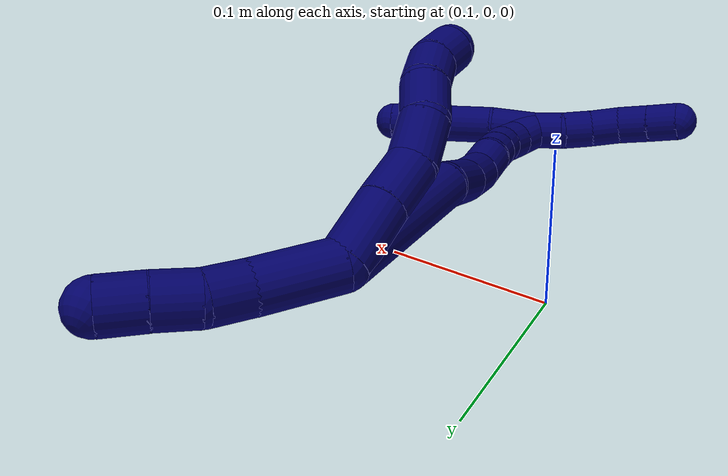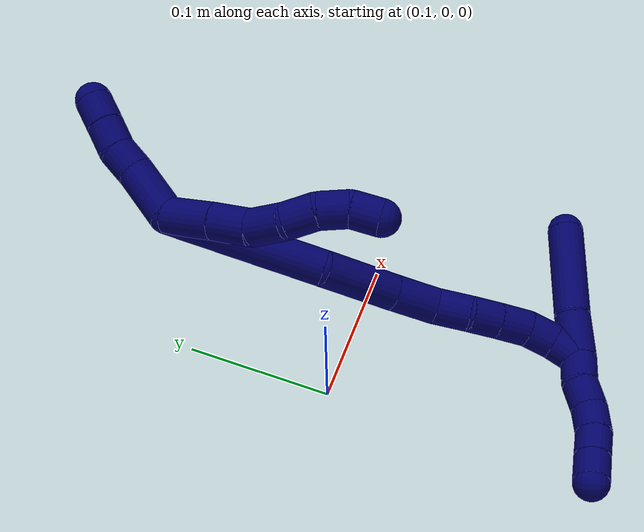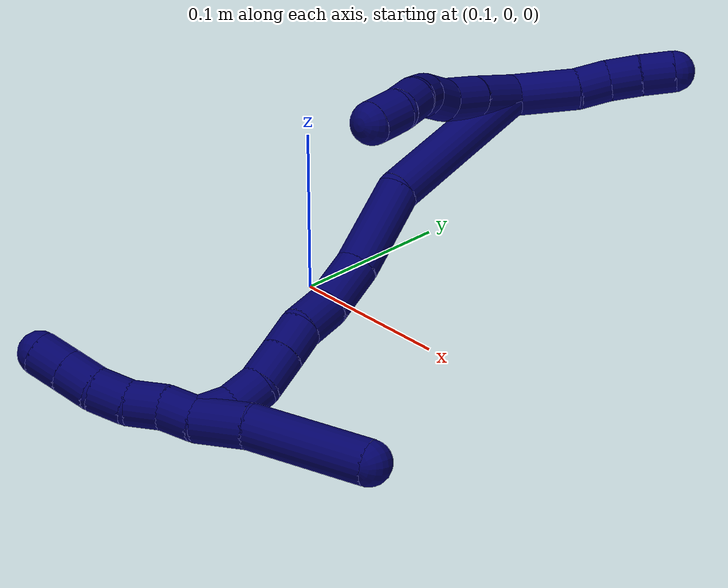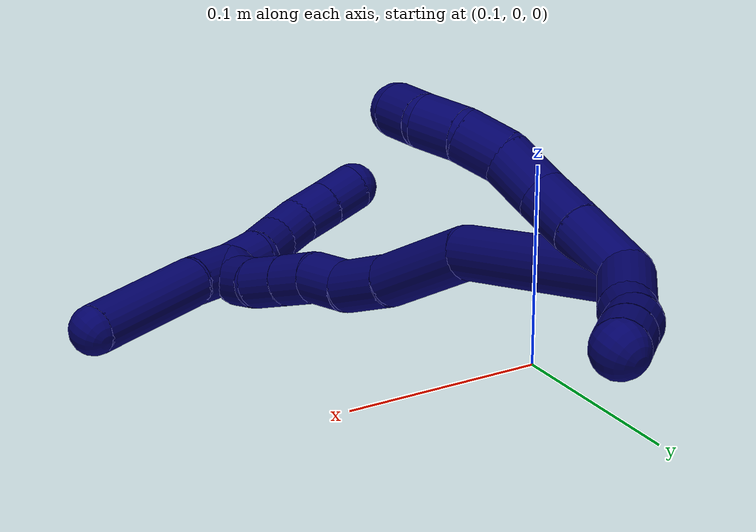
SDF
<sdf version="1.7">
 <world name="default">
  <model name="7">
   <static>0</static>
   <link name="7">
    <collision name="collision-cylinder-e_1_2_8">
     <pose>-0.001934 -0.000168 0.01713 0.009836 -0.112403 -0.000553</pose>
     <geometry><cylinder><radius>0.0125</radius><length>0.03448</length></cylinder></geometry>
     <surface>
      <friction><ode><mu>1.16</mu><mu2>1.16</mu2><slip1>0</slip1><slip2>0</slip2></ode></friction>
      <contact><ode><kp>1e+06</kp><kd>1</kd><max_vel>0</max_vel><min_depth>0.001</min_depth></ode></contact>
     </surface>
    </collision>
    <visual name="visual-cylinder-e_1_2_8">
     <pose>-0.001934 -0.000168 0.01713 0.009836 -0.112403 -0.000553</pose>
     <geometry><cylinder><radius>0.0125</radius><length>0.03448</length></cylinder></geometry>
     <material><ambient>0.003922 0 0.403922 1</ambient></material>
    </visual>
    <collision name="collision-cylinder-e_2_8_9">
     <pose>-0.005502 -0.001076 0.047683 0.054967 -0.121007 -0.003331</pose>
     <geometry><cylinder><radius>0.0125</radius><length>0.027085</length></cylinder></geometry>
     <surface>
      <friction><ode><mu>1.16</mu><mu2>1.16</mu2><slip1>0</slip1><slip2>0</slip2></ode></friction>
      <contact><ode><kp>1e+06</kp><kd>1</kd><max_vel>0</max_vel><min_depth>0.001</min_depth></ode></contact>
     </surface>
    </collision>
    <visual name="visual-cylinder-e_2_8_9">
     <pose>-0.005502 -0.001076 0.047683 0.054967 -0.121007 -0.003331</pose>
     <geometry><cylinder><radius>0.0125</radius><length>0.027085</length></cylinder></geometry>
     <material><ambient>0.003922 0 0.403922 1</ambient></material>
    </visual>
    <collision name="collision-cylinder-e_3_9_10">
     <pose>-0.007483 0.001388 0.073177 -0.259327 -0.027701 0.003612</pose>
     <geometry><cylinder><radius>0.0125</radius><length>0.024987</length></cylinder></geometry>
     <surface>
      <friction><ode><mu>1.16</mu><mu2>1.16</mu2><slip1>0</slip1><slip2>0</slip2></ode></friction>
      <contact><ode><kp>1e+06</kp><kd>1</kd><max_vel>0</max_vel><min_depth>0.001</min_depth></ode></contact>
     </surface>
    </collision>
    <visual name="visual-cylinder-e_3_9_10">
     <pose>-0.007483 0.001388 0.073177 -0.259327 -0.027701 0.003612</pose>
     <geometry><cylinder><radius>0.0125</radius><length>0.024987</length></cylinder></geometry>
     <material><ambient>0.003922 0 0.403922 1</ambient></material>
    </visual>
    <collision name="collision-cylinder-e_4_10_11">
     <pose>-0.004854 0.007147 0.095475 -0.244959 0.27507 -0.034072</pose>
     <geometry><cylinder><radius>0.0125</radius><length>0.021905</length></cylinder></geometry>
     <surface>
      <friction><ode><mu>1.16</mu><mu2>1.16</mu2><slip1>0</slip1><slip2>0</slip2></ode></friction>
      <contact><ode><kp>1e+06</kp><kd>1</kd><max_vel>0</max_vel><min_depth>0.001</min_depth></ode></contact>
     </surface>
    </collision>
    <visual name="visual-cylinder-e_4_10_11">
     <pose>-0.004854 0.007147 0.095475 -0.244959 0.27507 -0.034072</pose>
     <geometry><cylinder><radius>0.0125</radius><length>0.021905</length></cylinder></geometry>
     <material><ambient>0.003922 0 0.403922 1</ambient></material>
    </visual>
    <collision name="collision-cylinder-e_5_11_12">
     <pose>0.000918 0.009239 0.115921 0.045381 0.266865 0.006093</pose>
     <geometry><cylinder><radius>0.0125</radius><length>0.021213</length></cylinder></geometry>
     <surface>
      <friction><ode><mu>1.16</mu><mu2>1.16</mu2><slip1>0</slip1><slip2>0</slip2></ode></friction>
      <contact><ode><kp>1e+06</kp><kd>1</kd><max_vel>0</max_vel><min_depth>0.001</min_depth></ode></contact>
     </surface>
    </collision>
    <visual name="visual-cylinder-e_5_11_12">
     <pose>0.000918 0.009239 0.115921 0.045381 0.266865 0.006093</pose>
     <geometry><cylinder><radius>0.0125</radius><length>0.021213</length></cylinder></geometry>
     <material><ambient>0.003922 0 0.403922 1</ambient></material>
    </visual>
    <collision name="collision-cylinder-e_6_12_6">
     <pose>0.004064 0.005773 0.135848 0.299991 0.034319 0.005187</pose>
     <geometry><cylinder><radius>0.0125</radius><length>0.02033</length></cylinder></geometry>
     <surface>
      <friction><ode><mu>1.16</mu><mu2>1.16</mu2><slip1>0</slip1><slip2>0</slip2></ode></friction>
      <contact><ode><kp>1e+06</kp><kd>1</kd><max_vel>0</max_vel><min_depth>0.001</min_depth></ode></contact>
     </surface>
    </collision>
    <visual name="visual-cylinder-e_6_12_6">
     <pose>0.004064 0.005773 0.135848 0.299991 0.034319 0.005187</pose>
     <geometry><cylinder><radius>0.0125</radius><length>0.02033</length></cylinder></geometry>
     <material><ambient>0.003922 0 0.403922 1</ambient></material>
    </visual>
    <collision name="collision-cylinder-e_1_2_13">
     <pose>0.010594 0.009816 -0.013757 -2.52186 0.559937 -1.46342</pose>
     <geometry><cylinder><radius>0.0125</radius><length>0.039892</length></cylinder></geometry>
     <surface>
      <friction><ode><mu>1.16</mu><mu2>1.16</mu2><slip1>0</slip1><slip2>0</slip2></ode></friction>
      <contact><ode><kp>1e+06</kp><kd>1</kd><max_vel>0</max_vel><min_depth>0.001</min_depth></ode></contact>
     </surface>
    </collision>
    <visual name="visual-cylinder-e_1_2_13">
     <pose>0.010594 0.009816 -0.013757 -2.52186 0.559937 -1.46342</pose>
     <geometry><cylinder><radius>0.0125</radius><length>0.039892</length></cylinder></geometry>
     <material><ambient>0.003922 0 0.403922 1</ambient></material>
    </visual>
    <collision name="collision-cylinder-e_2_13_14">
     <pose>0.02506 0.025392 -0.034713 -2.46676 0.397599 -1.04252</pose>
     <geometry><cylinder><radius>0.0125</radius><length>0.02</length></cylinder></geometry>
     <surface>
      <friction><ode><mu>1.16</mu><mu2>1.16</mu2><slip1>0</slip1><slip2>0</slip2></ode></friction>
      <contact><ode><kp>1e+06</kp><kd>1</kd><max_vel>0</max_vel><min_depth>0.001</min_depth></ode></contact>
     </surface>
    </collision>
    <visual name="visual-cylinder-e_2_13_14">
     <pose>0.02506 0.025392 -0.034713 -2.46676 0.397599 -1.04252</pose>
     <geometry><cylinder><radius>0.0125</radius><length>0.02</length></cylinder></geometry>
     <material><ambient>0.003922 0 0.403922 1</ambient></material>
    </visual>
    <collision name="collision-cylinder-e_3_14_15">
     <pose>0.034553 0.037448 -0.047301 -2.27876 0.596051 -1.17686</pose>
     <geometry><cylinder><radius>0.0125</radius><length>0.020027</length></cylinder></geometry>
     <surface>
      <friction><ode><mu>1.16</mu><mu2>1.16</mu2><slip1>0</slip1><slip2>0</slip2></ode></friction>
      <contact><ode><kp>1e+06</kp><kd>1</kd><max_vel>0</max_vel><min_depth>0.001</min_depth></ode></contact>
     </surface>
    </collision>
    <visual name="visual-cylinder-e_3_14_15">
     <pose>0.034553 0.037448 -0.047301 -2.27876 0.596051 -1.17686</pose>
     <geometry><cylinder><radius>0.0125</radius><length>0.020027</length></cylinder></geometry>
     <material><ambient>0.003922 0 0.403922 1</ambient></material>
    </visual>
    <collision name="collision-cylinder-e_4_15_5">
     <pose>0.046074 0.04961 -0.058311 -2.33483 0.627992 -1.30088</pose>
     <geometry><cylinder><radius>0.0125</radius><length>0.020081</length></cylinder></geometry>
     <surface>
      <friction><ode><mu>1.16</mu><mu2>1.16</mu2><slip1>0</slip1><slip2>0</slip2></ode></friction>
      <contact><ode><kp>1e+06</kp><kd>1</kd><max_vel>0</max_vel><min_depth>0.001</min_depth></ode></contact>
     </surface>
    </collision>
    <visual name="visual-cylinder-e_4_15_5">
     <pose>0.046074 0.04961 -0.058311 -2.33483 0.627992 -1.30088</pose>
     <geometry><cylinder><radius>0.0125</radius><length>0.020081</length></cylinder></geometry>
     <material><ambient>0.003922 0 0.403922 1</ambient></material>
    </visual>
    <collision name="collision-cylinder-e_1_2_16">
     <pose>0.008357 -0.02281 0.047994 0.443665 0.155986 0.03525</pose>
     <geometry><cylinder><radius>0.0125</radius><length>0.107583</length></cylinder></geometry>
     <surface>
      <friction><ode><mu>1.16</mu><mu2>1.16</mu2><slip1>0</slip1><slip2>0</slip2></ode></friction>
      <contact><ode><kp>1e+06</kp><kd>1</kd><max_vel>0</max_vel><min_depth>0.001</min_depth></ode></contact>
     </surface>
    </collision>
    <visual name="visual-cylinder-e_1_2_16">
     <pose>0.008357 -0.02281 0.047994 0.443665 0.155986 0.03525</pose>
     <geometry><cylinder><radius>0.0125</radius><length>0.107583</length></cylinder></geometry>
     <material><ambient>0.003922 0 0.403922 1</ambient></material>
    </visual>
    <collision name="collision-cylinder-e_2_16_17">
     <pose>0.027677 -0.061011 0.115163 0.676376 0.419426 0.149435</pose>
     <geometry><cylinder><radius>0.0125</radius><length>0.053844</length></cylinder></geometry>
     <surface>
      <friction><ode><mu>1.16</mu><mu2>1.16</mu2><slip1>0</slip1><slip2>0</slip2></ode></friction>
      <contact><ode><kp>1e+06</kp><kd>1</kd><max_vel>0</max_vel><min_depth>0.001</min_depth></ode></contact>
     </surface>
    </collision>
    <visual name="visual-cylinder-e_2_16_17">
     <pose>0.027677 -0.061011 0.115163 0.676376 0.419426 0.149435</pose>
     <geometry><cylinder><radius>0.0125</radius><length>0.053844</length></cylinder></geometry>
     <material><ambient>0.003922 0 0.403922 1</ambient></material>
    </visual>
    <collision name="collision-cylinder-e_3_17_18">
     <pose>0.043535 -0.084265 0.146818 0.562189 0.320374 0.093237</pose>
     <geometry><cylinder><radius>0.0125</radius><length>0.031081</length></cylinder></geometry>
     <surface>
      <friction><ode><mu>1.16</mu><mu2>1.16</mu2><slip1>0</slip1><slip2>0</slip2></ode></friction>
      <contact><ode><kp>1e+06</kp><kd>1</kd><max_vel>0</max_vel><min_depth>0.001</min_depth></ode></contact>
     </surface>
    </collision>
    <visual name="visual-cylinder-e_3_17_18">
     <pose>0.043535 -0.084265 0.146818 0.562189 0.320374 0.093237</pose>
     <geometry><cylinder><radius>0.0125</radius><length>0.031081</length></cylinder></geometry>
     <material><ambient>0.003922 0 0.403922 1</ambient></material>
    </visual>
    <collision name="collision-cylinder-e_4_18_19">
     <pose>0.050509 -0.095897 0.170464 0.325547 0.17466 0.028755</pose>
     <geometry><cylinder><radius>0.0125</radius><length>0.023935</length></cylinder></geometry>
     <surface>
      <friction><ode><mu>1.16</mu><mu2>1.16</mu2><slip1>0</slip1><slip2>0</slip2></ode></friction>
      <contact><ode><kp>1e+06</kp><kd>1</kd><max_vel>0</max_vel><min_depth>0.001</min_depth></ode></contact>
     </surface>
    </collision>
    <visual name="visual-cylinder-e_4_18_19">
     <pose>0.050509 -0.095897 0.170464 0.325547 0.17466 0.028755</pose>
     <geometry><cylinder><radius>0.0125</radius><length>0.023935</length></cylinder></geometry>
     <material><ambient>0.003922 0 0.403922 1</ambient></material>
    </visual>
    <collision name="collision-cylinder-e_5_19_20">
     <pose>0.056208 -0.104288 0.190129 0.498137 0.358018 0.091982</pose>
     <geometry><cylinder><radius>0.0125</radius><length>0.020659</length></cylinder></geometry>
     <surface>
      <friction><ode><mu>1.16</mu><mu2>1.16</mu2><slip1>0</slip1><slip2>0</slip2></ode></friction>
      <contact><ode><kp>1e+06</kp><kd>1</kd><max_vel>0</max_vel><min_depth>0.001</min_depth></ode></contact>
     </surface>
    </collision>
    <visual name="visual-cylinder-e_5_19_20">
     <pose>0.056208 -0.104288 0.190129 0.498137 0.358018 0.091982</pose>
     <geometry><cylinder><radius>0.0125</radius><length>0.020659</length></cylinder></geometry>
     <material><ambient>0.003922 0 0.403922 1</ambient></material>
    </visual>
    <collision name="collision-cylinder-e_6_20_21">
     <pose>0.063595 -0.114114 0.207916 0.510676 0.340097 0.089583</pose>
     <geometry><cylinder><radius>0.0125</radius><length>0.022587</length></cylinder></geometry>
     <surface>
      <friction><ode><mu>1.16</mu><mu2>1.16</mu2><slip1>0</slip1><slip2>0</slip2></ode></friction>
      <contact><ode><kp>1e+06</kp><kd>1</kd><max_vel>0</max_vel><min_depth>0.001</min_depth></ode></contact>
     </surface>
    </collision>
    <visual name="visual-cylinder-e_6_20_21">
     <pose>0.063595 -0.114114 0.207916 0.510676 0.340097 0.089583</pose>
     <geometry><cylinder><radius>0.0125</radius><length>0.022587</length></cylinder></geometry>
     <material><ambient>0.003922 0 0.403922 1</ambient></material>
    </visual>
    <collision name="collision-cylinder-e_7_21_22">
     <pose>0.068057 -0.124641 0.225795 0.554703 0.068657 0.019553</pose>
     <geometry><cylinder><radius>0.0125</radius><length>0.020259</length></cylinder></geometry>
     <surface>
      <friction><ode><mu>1.16</mu><mu2>1.16</mu2><slip1>0</slip1><slip2>0</slip2></ode></friction>
      <contact><ode><kp>1e+06</kp><kd>1</kd><max_vel>0</max_vel><min_depth>0.001</min_depth></ode></contact>
     </surface>
    </collision>
    <visual name="visual-cylinder-e_7_21_22">
     <pose>0.068057 -0.124641 0.225795 0.554703 0.068657 0.019553</pose>
     <geometry><cylinder><radius>0.0125</radius><length>0.020259</length></cylinder></geometry>
     <material><ambient>0.003922 0 0.403922 1</ambient></material>
    </visual>
    <collision name="collision-cylinder-e_8_22_1">
     <pose>0.066437 -0.134235 0.243155 0.453244 -0.232975 -0.053951</pose>
     <geometry><cylinder><radius>0.0125</radius><length>0.020052</length></cylinder></geometry>
     <surface>
      <friction><ode><mu>1.16</mu><mu2>1.16</mu2><slip1>0</slip1><slip2>0</slip2></ode></friction>
      <contact><ode><kp>1e+06</kp><kd>1</kd><max_vel>0</max_vel><min_depth>0.001</min_depth></ode></contact>
     </surface>
    </collision>
    <visual name="visual-cylinder-e_8_22_1">
     <pose>0.066437 -0.134235 0.243155 0.453244 -0.232975 -0.053951</pose>
     <geometry><cylinder><radius>0.0125</radius><length>0.020052</length></cylinder></geometry>
     <material><ambient>0.003922 0 0.403922 1</ambient></material>
    </visual>
    <collision name="collision-cylinder-e_1_1_23">
     <pose>0.076258 -0.129733 0.248106 -1.98138 0.903121 -1.27423</pose>
     <geometry><cylinder><radius>0.0125</radius><length>0.03091</length></cylinder></geometry>
     <surface>
      <friction><ode><mu>1.16</mu><mu2>1.16</mu2><slip1>0</slip1><slip2>0</slip2></ode></friction>
      <contact><ode><kp>1e+06</kp><kd>1</kd><max_vel>0</max_vel><min_depth>0.001</min_depth></ode></contact>
     </surface>
    </collision>
    <visual name="visual-cylinder-e_1_1_23">
     <pose>0.076258 -0.129733 0.248106 -1.98138 0.903121 -1.27423</pose>
     <geometry><cylinder><radius>0.0125</radius><length>0.03091</length></cylinder></geometry>
     <material><ambient>0.003922 0 0.403922 1</ambient></material>
    </visual>
    <collision name="collision-cylinder-e_2_23_4">
     <pose>0.118552 -0.105705 0.237129 -2.00952 1.06129 -1.49129</pose>
     <geometry><cylinder><radius>0.0125</radius><length>0.06909</length></cylinder></geometry>
     <surface>
      <friction><ode><mu>1.16</mu><mu2>1.16</mu2><slip1>0</slip1><slip2>0</slip2></ode></friction>
      <contact><ode><kp>1e+06</kp><kd>1</kd><max_vel>0</max_vel><min_depth>0.001</min_depth></ode></contact>
     </surface>
    </collision>
    <visual name="visual-cylinder-e_2_23_4">
     <pose>0.118552 -0.105705 0.237129 -2.00952 1.06129 -1.49129</pose>
     <geometry><cylinder><radius>0.0125</radius><length>0.06909</length></cylinder></geometry>
     <material><ambient>0.003922 0 0.403922 1</ambient></material>
    </visual>
    <collision name="collision-cylinder-e_1_1_24">
     <pose>0.055107 -0.142409 0.253796 1.1239 -1.12326 -0.754455</pose>
     <geometry><cylinder><radius>0.0125</radius><length>0.02</length></cylinder></geometry>
     <surface>
      <friction><ode><mu>1.16</mu><mu2>1.16</mu2><slip1>0</slip1><slip2>0</slip2></ode></friction>
      <contact><ode><kp>1e+06</kp><kd>1</kd><max_vel>0</max_vel><min_depth>0.001</min_depth></ode></contact>
     </surface>
    </collision>
    <visual name="visual-cylinder-e_1_1_24">
     <pose>0.055107 -0.142409 0.253796 1.1239 -1.12326 -0.754455</pose>
     <geometry><cylinder><radius>0.0125</radius><length>0.02</length></cylinder></geometry>
     <material><ambient>0.003922 0 0.403922 1</ambient></material>
    </visual>
    <collision name="collision-cylinder-e_2_24_25">
     <pose>0.038438 -0.151036 0.260035 0.824464 -0.871668 -0.401797</pose>
     <geometry><cylinder><radius>0.0125</radius><length>0.02</length></cylinder></geometry>
     <surface>
      <friction><ode><mu>1.16</mu><mu2>1.16</mu2><slip1>0</slip1><slip2>0</slip2></ode></friction>
      <contact><ode><kp>1e+06</kp><kd>1</kd><max_vel>0</max_vel><min_depth>0.001</min_depth></ode></contact>
     </surface>
    </collision>
    <visual name="visual-cylinder-e_2_24_25">
     <pose>0.038438 -0.151036 0.260035 0.824464 -0.871668 -0.401797</pose>
     <geometry><cylinder><radius>0.0125</radius><length>0.02</length></cylinder></geometry>
     <material><ambient>0.003922 0 0.403922 1</ambient></material>
    </visual>
    <collision name="collision-cylinder-e_3_25_26">
     <pose>0.021744 -0.158863 0.267348 0.81157 -1.12891 -0.531205</pose>
     <geometry><cylinder><radius>0.0125</radius><length>0.02</length></cylinder></geometry>
     <surface>
      <friction><ode><mu>1.16</mu><mu2>1.16</mu2><slip1>0</slip1><slip2>0</slip2></ode></friction>
      <contact><ode><kp>1e+06</kp><kd>1</kd><max_vel>0</max_vel><min_depth>0.001</min_depth></ode></contact>
     </surface>
    </collision>
    <visual name="visual-cylinder-e_3_25_26">
     <pose>0.021744 -0.158863 0.267348 0.81157 -1.12891 -0.531205</pose>
     <geometry><cylinder><radius>0.0125</radius><length>0.02</length></cylinder></geometry>
     <material><ambient>0.003922 0 0.403922 1</ambient></material>
    </visual>
    <collision name="collision-cylinder-e_4_26_27">
     <pose>0.00305 -0.164342 0.271354 1.15042 -1.30744 -0.921996</pose>
     <geometry><cylinder><radius>0.0125</radius><length>0.02</length></cylinder></geometry>
     <surface>
      <friction><ode><mu>1.16</mu><mu2>1.16</mu2><slip1>0</slip1><slip2>0</slip2></ode></friction>
      <contact><ode><kp>1e+06</kp><kd>1</kd><max_vel>0</max_vel><min_depth>0.001</min_depth></ode></contact>
     </surface>
    </collision>
    <visual name="visual-cylinder-e_4_26_27">
     <pose>0.00305 -0.164342 0.271354 1.15042 -1.30744 -0.921996</pose>
     <geometry><cylinder><radius>0.0125</radius><length>0.02</length></cylinder></geometry>
     <material><ambient>0.003922 0 0.403922 1</ambient></material>
    </visual>
    <collision name="collision-cylinder-e_5_27_3">
     <pose>-0.01626 -0.16904 0.273602 1.0988 -1.30706 -0.876881</pose>
     <geometry><cylinder><radius>0.0125</radius><length>0.02</length></cylinder></geometry>
     <surface>
      <friction><ode><mu>1.16</mu><mu2>1.16</mu2><slip1>0</slip1><slip2>0</slip2></ode></friction>
      <contact><ode><kp>1e+06</kp><kd>1</kd><max_vel>0</max_vel><min_depth>0.001</min_depth></ode></contact>
     </surface>
    </collision>
    <visual name="visual-cylinder-e_5_27_3">
     <pose>-0.01626 -0.16904 0.273602 1.0988 -1.30706 -0.876881</pose>
     <geometry><cylinder><radius>0.0125</radius><length>0.02</length></cylinder></geometry>
     <material><ambient>0.003922 0 0.403922 1</ambient></material>
    </visual>
    <collision name="collision-sphere-3">
     <pose>-0.025914 -0.171362 0.274787 0 -0 0</pose>
     <geometry><sphere><radius>0.0125</radius></sphere></geometry>
     <surface>
      <friction><ode><mu>1.16</mu><mu2>1.16</mu2><slip1>0</slip1><slip2>0</slip2></ode></friction>
      <contact><ode><kp>1e+06</kp><kd>1</kd><max_vel>0</max_vel><min_depth>0.001</min_depth></ode></contact>
     </surface>
    </collision>
    <visual name="visual-sphere-3">
     <pose>-0.025914 -0.171362 0.274787 0 -0 0</pose>
     <geometry><sphere><radius>0.0125</radius></sphere></geometry>
     <material><ambient>0.003922 0 0.403922 1</ambient></material>
    </visual>
    <collision name="collision-sphere-27">
     <pose>-0.006606 -0.166718 0.272417 0 -0 0</pose>
     <geometry><sphere><radius>0.0125</radius></sphere></geometry>
     <surface>
      <friction><ode><mu>1.16</mu><mu2>1.16</mu2><slip1>0</slip1><slip2>0</slip2></ode></friction>
      <contact><ode><kp>1e+06</kp><kd>1</kd><max_vel>0</max_vel><min_depth>0.001</min_depth></ode></contact>
     </surface>
    </collision>
    <visual name="visual-sphere-27">
     <pose>-0.006606 -0.166718 0.272417 0 -0 0</pose>
     <geometry><sphere><radius>0.0125</radius></sphere></geometry>
     <material><ambient>0.003922 0 0.403922 1</ambient></material>
    </visual>
    <collision name="collision-sphere-26">
     <pose>0.012705 -0.161965 0.270292 0 -0 0</pose>
     <geometry><sphere><radius>0.0125</radius></sphere></geometry>
     <surface>
      <friction><ode><mu>1.16</mu><mu2>1.16</mu2><slip1>0</slip1><slip2>0</slip2></ode></friction>
      <contact><ode><kp>1e+06</kp><kd>1</kd><max_vel>0</max_vel><min_depth>0.001</min_depth></ode></contact>
     </surface>
    </collision>
    <visual name="visual-sphere-26">
     <pose>0.012705 -0.161965 0.270292 0 -0 0</pose>
     <geometry><sphere><radius>0.0125</radius></sphere></geometry>
     <material><ambient>0.003922 0 0.403922 1</ambient></material>
    </visual>
    <collision name="collision-sphere-25">
     <pose>0.030784 -0.155761 0.264405 0 -0 0</pose>
     <geometry><sphere><radius>0.0125</radius></sphere></geometry>
     <surface>
      <friction><ode><mu>1.16</mu><mu2>1.16</mu2><slip1>0</slip1><slip2>0</slip2></ode></friction>
      <contact><ode><kp>1e+06</kp><kd>1</kd><max_vel>0</max_vel><min_depth>0.001</min_depth></ode></contact>
     </surface>
    </collision>
    <visual name="visual-sphere-25">
     <pose>0.030784 -0.155761 0.264405 0 -0 0</pose>
     <geometry><sphere><radius>0.0125</radius></sphere></geometry>
     <material><ambient>0.003922 0 0.403922 1</ambient></material>
    </visual>
    <collision name="collision-sphere-24">
     <pose>0.046092 -0.146311 0.255666 0 -0 0</pose>
     <geometry><sphere><radius>0.0125</radius></sphere></geometry>
     <surface>
      <friction><ode><mu>1.16</mu><mu2>1.16</mu2><slip1>0</slip1><slip2>0</slip2></ode></friction>
      <contact><ode><kp>1e+06</kp><kd>1</kd><max_vel>0</max_vel><min_depth>0.001</min_depth></ode></contact>
     </surface>
    </collision>
    <visual name="visual-sphere-24">
     <pose>0.046092 -0.146311 0.255666 0 -0 0</pose>
     <geometry><sphere><radius>0.0125</radius></sphere></geometry>
     <material><ambient>0.003922 0 0.403922 1</ambient></material>
    </visual>
    <collision name="collision-sphere-4">
     <pose>0.148709 -0.090452 0.229972 0 -0 0</pose>
     <geometry><sphere><radius>0.0125</radius></sphere></geometry>
     <surface>
      <friction><ode><mu>1.16</mu><mu2>1.16</mu2><slip1>0</slip1><slip2>0</slip2></ode></friction>
      <contact><ode><kp>1e+06</kp><kd>1</kd><max_vel>0</max_vel><min_depth>0.001</min_depth></ode></contact>
     </surface>
    </collision>
    <visual name="visual-sphere-4">
     <pose>0.148709 -0.090452 0.229972 0 -0 0</pose>
     <geometry><sphere><radius>0.0125</radius></sphere></geometry>
     <material><ambient>0.003922 0 0.403922 1</ambient></material>
    </visual>
    <collision name="collision-sphere-23">
     <pose>0.088394 -0.120959 0.244287 0 -0 0</pose>
     <geometry><sphere><radius>0.0125</radius></sphere></geometry>
     <surface>
      <friction><ode><mu>1.16</mu><mu2>1.16</mu2><slip1>0</slip1><slip2>0</slip2></ode></friction>
      <contact><ode><kp>1e+06</kp><kd>1</kd><max_vel>0</max_vel><min_depth>0.001</min_depth></ode></contact>
     </surface>
    </collision>
    <visual name="visual-sphere-23">
     <pose>0.088394 -0.120959 0.244287 0 -0 0</pose>
     <geometry><sphere><radius>0.0125</radius></sphere></geometry>
     <material><ambient>0.003922 0 0.403922 1</ambient></material>
    </visual>
    <collision name="collision-sphere-1">
     <pose>0.064122 -0.138506 0.251925 0 -0 0</pose>
     <geometry><sphere><radius>0.0125</radius></sphere></geometry>
     <surface>
      <friction><ode><mu>1.16</mu><mu2>1.16</mu2><slip1>0</slip1><slip2>0</slip2></ode></friction>
      <contact><ode><kp>1e+06</kp><kd>1</kd><max_vel>0</max_vel><min_depth>0.001</min_depth></ode></contact>
     </surface>
    </collision>
    <visual name="visual-sphere-1">
     <pose>0.064122 -0.138506 0.251925 0 -0 0</pose>
     <geometry><sphere><radius>0.0125</radius></sphere></geometry>
     <material><ambient>0.003922 0 0.403922 1</ambient></material>
    </visual>
    <collision name="collision-sphere-22">
     <pose>0.068752 -0.129963 0.234385 0 -0 0</pose>
     <geometry><sphere><radius>0.0125</radius></sphere></geometry>
     <surface>
      <friction><ode><mu>1.16</mu><mu2>1.16</mu2><slip1>0</slip1><slip2>0</slip2></ode></friction>
      <contact><ode><kp>1e+06</kp><kd>1</kd><max_vel>0</max_vel><min_depth>0.001</min_depth></ode></contact>
     </surface>
    </collision>
    <visual name="visual-sphere-22">
     <pose>0.068752 -0.129963 0.234385 0 -0 0</pose>
     <geometry><sphere><radius>0.0125</radius></sphere></geometry>
     <material><ambient>0.003922 0 0.403922 1</ambient></material>
    </visual>
    <collision name="collision-sphere-21">
     <pose>0.067362 -0.119318 0.217204 0 -0 0</pose>
     <geometry><sphere><radius>0.0125</radius></sphere></geometry>
     <surface>
      <friction><ode><mu>1.16</mu><mu2>1.16</mu2><slip1>0</slip1><slip2>0</slip2></ode></friction>
      <contact><ode><kp>1e+06</kp><kd>1</kd><max_vel>0</max_vel><min_depth>0.001</min_depth></ode></contact>
     </surface>
    </collision>
    <visual name="visual-sphere-21">
     <pose>0.067362 -0.119318 0.217204 0 -0 0</pose>
     <geometry><sphere><radius>0.0125</radius></sphere></geometry>
     <material><ambient>0.003922 0 0.403922 1</ambient></material>
    </visual>
    <collision name="collision-sphere-12">
     <pose>0.003715 0.008775 0.126142 0 -0 0</pose>
     <geometry><sphere><radius>0.0125</radius></sphere></geometry>
     <surface>
      <friction><ode><mu>1.16</mu><mu2>1.16</mu2><slip1>0</slip1><slip2>0</slip2></ode></friction>
      <contact><ode><kp>1e+06</kp><kd>1</kd><max_vel>0</max_vel><min_depth>0.001</min_depth></ode></contact>
     </surface>
    </collision>
    <visual name="visual-sphere-12">
     <pose>0.003715 0.008775 0.126142 0 -0 0</pose>
     <geometry><sphere><radius>0.0125</radius></sphere></geometry>
     <material><ambient>0.003922 0 0.403922 1</ambient></material>
    </visual>
    <collision name="collision-sphere-11">
     <pose>-0.001879 0.009704 0.105701 0 -0 0</pose>
     <geometry><sphere><radius>0.0125</radius></sphere></geometry>
     <surface>
      <friction><ode><mu>1.16</mu><mu2>1.16</mu2><slip1>0</slip1><slip2>0</slip2></ode></friction>
      <contact><ode><kp>1e+06</kp><kd>1</kd><max_vel>0</max_vel><min_depth>0.001</min_depth></ode></contact>
     </surface>
    </collision>
    <visual name="visual-sphere-11">
     <pose>-0.001879 0.009704 0.105701 0 -0 0</pose>
     <geometry><sphere><radius>0.0125</radius></sphere></geometry>
     <material><ambient>0.003922 0 0.403922 1</ambient></material>
    </visual>
    <collision name="collision-sphere-10">
     <pose>-0.007829 0.004591 0.085248 0 -0 0</pose>
     <geometry><sphere><radius>0.0125</radius></sphere></geometry>
     <surface>
      <friction><ode><mu>1.16</mu><mu2>1.16</mu2><slip1>0</slip1><slip2>0</slip2></ode></friction>
      <contact><ode><kp>1e+06</kp><kd>1</kd><max_vel>0</max_vel><min_depth>0.001</min_depth></ode></contact>
     </surface>
    </collision>
    <visual name="visual-sphere-10">
     <pose>-0.007829 0.004591 0.085248 0 -0 0</pose>
     <geometry><sphere><radius>0.0125</radius></sphere></geometry>
     <material><ambient>0.003922 0 0.403922 1</ambient></material>
    </visual>
    <collision name="collision-sphere-9">
     <pose>-0.007137 -0.001814 0.061106 0 -0 0</pose>
     <geometry><sphere><radius>0.0125</radius></sphere></geometry>
     <surface>
      <friction><ode><mu>1.16</mu><mu2>1.16</mu2><slip1>0</slip1><slip2>0</slip2></ode></friction>
      <contact><ode><kp>1e+06</kp><kd>1</kd><max_vel>0</max_vel><min_depth>0.001</min_depth></ode></contact>
     </surface>
    </collision>
    <visual name="visual-sphere-9">
     <pose>-0.007137 -0.001814 0.061106 0 -0 0</pose>
     <geometry><sphere><radius>0.0125</radius></sphere></geometry>
     <material><ambient>0.003922 0 0.403922 1</ambient></material>
    </visual>
    <collision name="collision-sphere-2">
     <geometry><sphere><radius>0.0125</radius></sphere></geometry>
     <surface>
      <friction><ode><mu>1.16</mu><mu2>1.16</mu2><slip1>0</slip1><slip2>0</slip2></ode></friction>
      <contact><ode><kp>1e+06</kp><kd>1</kd><max_vel>0</max_vel><min_depth>0.001</min_depth></ode></contact>
     </surface>
    </collision>
    <visual name="visual-sphere-2">
     <geometry><sphere><radius>0.0125</radius></sphere></geometry>
     <material><ambient>0.003922 0 0.403922 1</ambient></material>
    </visual>
    <collision name="collision-sphere-19">
     <pose>0.052588 -0.099666 0.18163 0 -0 0</pose>
     <geometry><sphere><radius>0.0125</radius></sphere></geometry>
     <surface>
      <friction><ode><mu>1.16</mu><mu2>1.16</mu2><slip1>0</slip1><slip2>0</slip2></ode></friction>
      <contact><ode><kp>1e+06</kp><kd>1</kd><max_vel>0</max_vel><min_depth>0.001</min_depth></ode></contact>
     </surface>
    </collision>
    <visual name="visual-sphere-19">
     <pose>0.052588 -0.099666 0.18163 0 -0 0</pose>
     <geometry><sphere><radius>0.0125</radius></sphere></geometry>
     <material><ambient>0.003922 0 0.403922 1</ambient></material>
    </visual>
    <collision name="collision-sphere-8">
     <pose>-0.003867 -0.000337 0.03426 0 -0 0</pose>
     <geometry><sphere><radius>0.0125</radius></sphere></geometry>
     <surface>
      <friction><ode><mu>1.16</mu><mu2>1.16</mu2><slip1>0</slip1><slip2>0</slip2></ode></friction>
      <contact><ode><kp>1e+06</kp><kd>1</kd><max_vel>0</max_vel><min_depth>0.001</min_depth></ode></contact>
     </surface>
    </collision>
    <visual name="visual-sphere-8">
     <pose>-0.003867 -0.000337 0.03426 0 -0 0</pose>
     <geometry><sphere><radius>0.0125</radius></sphere></geometry>
     <material><ambient>0.003922 0 0.403922 1</ambient></material>
    </visual>
    <collision name="collision-sphere-6">
     <pose>0.004412 0.002771 0.145553 0 -0 0</pose>
     <geometry><sphere><radius>0.0125</radius></sphere></geometry>
     <surface>
      <friction><ode><mu>1.16</mu><mu2>1.16</mu2><slip1>0</slip1><slip2>0</slip2></ode></friction>
      <contact><ode><kp>1e+06</kp><kd>1</kd><max_vel>0</max_vel><min_depth>0.001</min_depth></ode></contact>
     </surface>
    </collision>
    <visual name="visual-sphere-6">
     <pose>0.004412 0.002771 0.145553 0 -0 0</pose>
     <geometry><sphere><radius>0.0125</radius></sphere></geometry>
     <material><ambient>0.003922 0 0.403922 1</ambient></material>
    </visual>
    <collision name="collision-sphere-13">
     <pose>0.021188 0.019631 -0.027514 0 -0 0</pose>
     <geometry><sphere><radius>0.0125</radius></sphere></geometry>
     <surface>
      <friction><ode><mu>1.16</mu><mu2>1.16</mu2><slip1>0</slip1><slip2>0</slip2></ode></friction>
      <contact><ode><kp>1e+06</kp><kd>1</kd><max_vel>0</max_vel><min_depth>0.001</min_depth></ode></contact>
     </surface>
    </collision>
    <visual name="visual-sphere-13">
     <pose>0.021188 0.019631 -0.027514 0 -0 0</pose>
     <geometry><sphere><radius>0.0125</radius></sphere></geometry>
     <material><ambient>0.003922 0 0.403922 1</ambient></material>
    </visual>
    <collision name="collision-sphere-14">
     <pose>0.028932 0.031152 -0.041912 0 -0 0</pose>
     <geometry><sphere><radius>0.0125</radius></sphere></geometry>
     <surface>
      <friction><ode><mu>1.16</mu><mu2>1.16</mu2><slip1>0</slip1><slip2>0</slip2></ode></friction>
      <contact><ode><kp>1e+06</kp><kd>1</kd><max_vel>0</max_vel><min_depth>0.001</min_depth></ode></contact>
     </surface>
    </collision>
    <visual name="visual-sphere-14">
     <pose>0.028932 0.031152 -0.041912 0 -0 0</pose>
     <geometry><sphere><radius>0.0125</radius></sphere></geometry>
     <material><ambient>0.003922 0 0.403922 1</ambient></material>
    </visual>
    <collision name="collision-sphere-15">
     <pose>0.040175 0.043743 -0.05269 0 -0 0</pose>
     <geometry><sphere><radius>0.0125</radius></sphere></geometry>
     <surface>
      <friction><ode><mu>1.16</mu><mu2>1.16</mu2><slip1>0</slip1><slip2>0</slip2></ode></friction>
      <contact><ode><kp>1e+06</kp><kd>1</kd><max_vel>0</max_vel><min_depth>0.001</min_depth></ode></contact>
     </surface>
    </collision>
    <visual name="visual-sphere-15">
     <pose>0.040175 0.043743 -0.05269 0 -0 0</pose>
     <geometry><sphere><radius>0.0125</radius></sphere></geometry>
     <material><ambient>0.003922 0 0.403922 1</ambient></material>
    </visual>
    <collision name="collision-sphere-5">
     <pose>0.051973 0.055476 -0.063932 0 -0 0</pose>
     <geometry><sphere><radius>0.0125</radius></sphere></geometry>
     <surface>
      <friction><ode><mu>1.16</mu><mu2>1.16</mu2><slip1>0</slip1><slip2>0</slip2></ode></friction>
      <contact><ode><kp>1e+06</kp><kd>1</kd><max_vel>0</max_vel><min_depth>0.001</min_depth></ode></contact>
     </surface>
    </collision>
    <visual name="visual-sphere-5">
     <pose>0.051973 0.055476 -0.063932 0 -0 0</pose>
     <geometry><sphere><radius>0.0125</radius></sphere></geometry>
     <material><ambient>0.003922 0 0.403922 1</ambient></material>
    </visual>
    <collision name="collision-sphere-16">
     <pose>0.016713 -0.04562 0.095988 0 -0 0</pose>
     <geometry><sphere><radius>0.0125</radius></sphere></geometry>
     <surface>
      <friction><ode><mu>1.16</mu><mu2>1.16</mu2><slip1>0</slip1><slip2>0</slip2></ode></friction>
      <contact><ode><kp>1e+06</kp><kd>1</kd><max_vel>0</max_vel><min_depth>0.001</min_depth></ode></contact>
     </surface>
    </collision>
    <visual name="visual-sphere-16">
     <pose>0.016713 -0.04562 0.095988 0 -0 0</pose>
     <geometry><sphere><radius>0.0125</radius></sphere></geometry>
     <material><ambient>0.003922 0 0.403922 1</ambient></material>
    </visual>
    <collision name="collision-sphere-17">
     <pose>0.038641 -0.076403 0.134338 0 -0 0</pose>
     <geometry><sphere><radius>0.0125</radius></sphere></geometry>
     <surface>
      <friction><ode><mu>1.16</mu><mu2>1.16</mu2><slip1>0</slip1><slip2>0</slip2></ode></friction>
      <contact><ode><kp>1e+06</kp><kd>1</kd><max_vel>0</max_vel><min_depth>0.001</min_depth></ode></contact>
     </surface>
    </collision>
    <visual name="visual-sphere-17">
     <pose>0.038641 -0.076403 0.134338 0 -0 0</pose>
     <geometry><sphere><radius>0.0125</radius></sphere></geometry>
     <material><ambient>0.003922 0 0.403922 1</ambient></material>
    </visual>
    <collision name="collision-sphere-18">
     <pose>0.048429 -0.092127 0.159298 0 -0 0</pose>
     <geometry><sphere><radius>0.0125</radius></sphere></geometry>
     <surface>
      <friction><ode><mu>1.16</mu><mu2>1.16</mu2><slip1>0</slip1><slip2>0</slip2></ode></friction>
      <contact><ode><kp>1e+06</kp><kd>1</kd><max_vel>0</max_vel><min_depth>0.001</min_depth></ode></contact>
     </surface>
    </collision>
    <visual name="visual-sphere-18">
     <pose>0.048429 -0.092127 0.159298 0 -0 0</pose>
     <geometry><sphere><radius>0.0125</radius></sphere></geometry>
     <material><ambient>0.003922 0 0.403922 1</ambient></material>
    </visual>
    <collision name="collision-sphere-20">
     <pose>0.059827 -0.108911 0.198628 0 -0 0</pose>
     <geometry><sphere><radius>0.0125</radius></sphere></geometry>
     <surface>
      <friction><ode><mu>1.16</mu><mu2>1.16</mu2><slip1>0</slip1><slip2>0</slip2></ode></friction>
      <contact><ode><kp>1e+06</kp><kd>1</kd><max_vel>0</max_vel><min_depth>0.001</min_depth></ode></contact>
     </surface>
    </collision>
    <visual name="visual-sphere-20">
     <pose>0.059827 -0.108911 0.198628 0 -0 0</pose>
     <geometry><sphere><radius>0.0125</radius></sphere></geometry>
     <material><ambient>0.003922 0 0.403922 1</ambient></material>
    </visual>
    <inertial>
     <pose>0.033311 -0.059352 0.128424 0 -0 0</pose>
     <mass>0.75</mass>
     <inertia><ixx>0.00014</ixx><ixy>0</ixy><ixz>0</ixz><iyy>0.000142</iyy><iyz>0</iyz><izz>1.3e-05</izz></inertia>
    </inertial>
   </link>
   <pose>0.141392 0.12579 0.099026 1.30086 0.438433 0.029828</pose>
  </model>
 </world>
</sdf>
